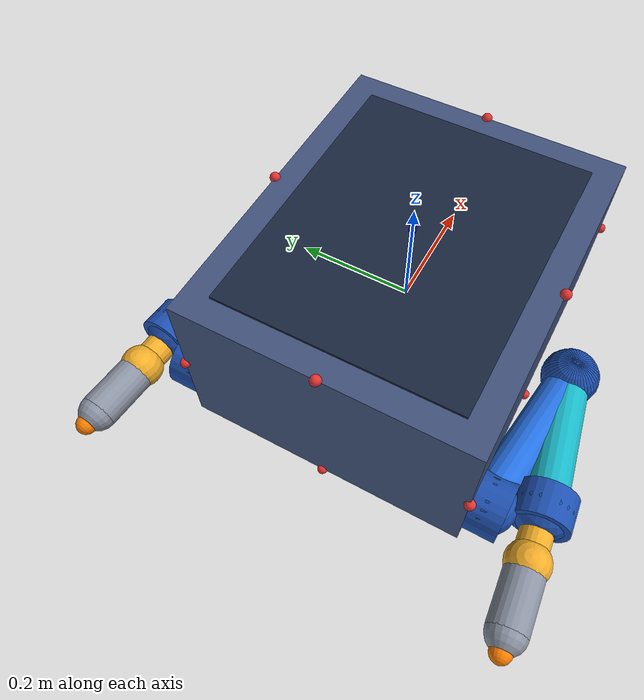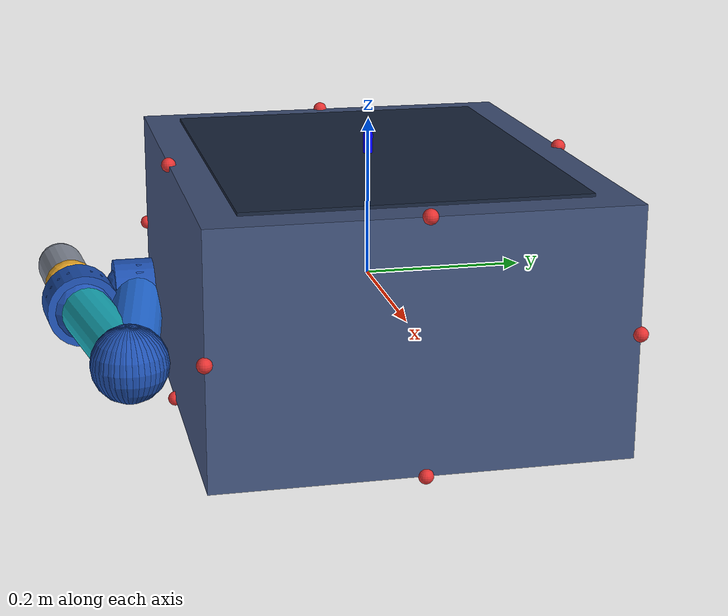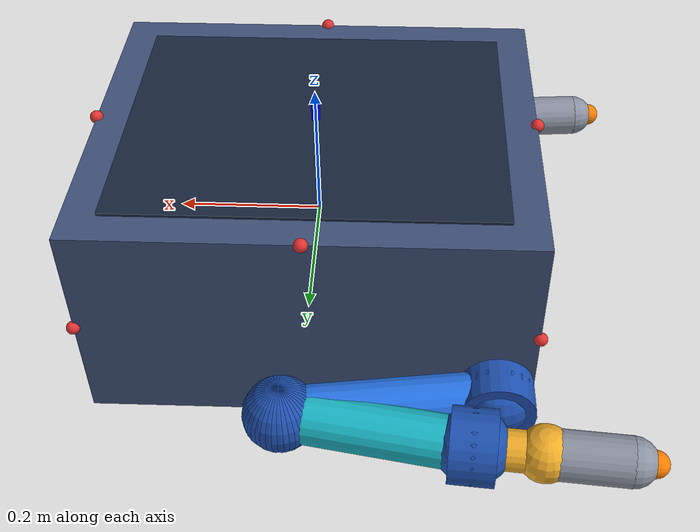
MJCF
<mujoco model="DASM_16DoF_Basilisk">
  <compiler angle="radian" inertiafromgeom="false" balanceinertia="true"/>
  <option gravity="0 0 0" timestep="0.001"><flag contact="disable"/></option>
  <default><joint damping="0" frictionloss="0"/><geom contype="0" conaffinity="0" mass="0"/><site size="0.012" rgba="1 0.7 0 1"/></default>
  <worldbody>
    <body name="spacecraft_base">
      <freejoint name="base_free"/>
      <inertial pos="0 0 0" mass="49.22" fullinertia="1.5399 2.7177 2.0322 0.1251 0.00144 -0.0019"/>
      <geom name="spacecraft_box" type="box" pos="0 0 0" size="0.3 0.25 0.1525" rgba="0.25 0.32 0.48 1"/>
      <site name="vizproxy_spacecraft_box" pos="0 0 0" quat="1 0 0 0" size="0.0005" rgba="0 0 0 0" group="5"/>
      <geom name="spacecraft_top_panel" type="box" pos="0 0 0.1545" size="0.255 0.205 0.002" rgba="0.10 0.15 0.24 1"/>
      <site name="vizproxy_spacecraft_top_panel" pos="0 0 0.1545" quat="1 0 0 0" size="0.0005" rgba="0 0 0 0" group="5"/>
      <site name="base_origin_site" pos="0 0 0" quat="1 0 0 0"/>
      <geom name="base_axis_x" type="capsule" fromto="0 0 0 0.18 0 0" size="0.006" rgba="1 0 0 1"/>
      <site name="vizproxy_base_axis_x" type="cylinder" fromto="0 0 0 0.18 0 0" size="0.0005" rgba="0 0 0 0" group="5"/>
      <geom name="base_axis_y" type="capsule" fromto="0 0 0 0 0.18 0" size="0.006" rgba="0 1 0 1"/>
      <site name="vizproxy_base_axis_y" type="cylinder" fromto="0 0 0 0 0.18 0" size="0.0005" rgba="0 0 0 0" group="5"/>
      <geom name="base_axis_z" type="capsule" fromto="0 0 0 0 0 0.18" size="0.006" rgba="0 0 1 1"/>
      <site name="vizproxy_base_axis_z" type="cylinder" fromto="0 0 0 0 0 0.18" size="0.0005" rgba="0 0 0 0" group="5"/>
      <site name="thruster_01_site" pos="0 0.25 0.1525" quat="1 0 0 0" size="0.009" rgba="0.9 0.2 0.2 1"/>
      <site name="thruster_02_site" pos="0 -0.25 -0.1525" quat="1 0 0 0" size="0.009" rgba="0.9 0.2 0.2 1"/>
      <site name="thruster_03_site" pos="0 0.25 -0.1525" quat="1 0 0 0" size="0.009" rgba="0.9 0.2 0.2 1"/>
      <site name="thruster_04_site" pos="0 -0.25 0.1525" quat="1 0 0 0" size="0.009" rgba="0.9 0.2 0.2 1"/>
      <site name="thruster_05_site" pos="0.3 0 0.1525" quat="1 0 0 0" size="0.009" rgba="0.9 0.2 0.2 1"/>
      <site name="thruster_06_site" pos="-0.3 0 -0.1525" quat="1 0 0 0" size="0.009" rgba="0.9 0.2 0.2 1"/>
      <site name="thruster_07_site" pos="0.3 0 -0.1525" quat="1 0 0 0" size="0.009" rgba="0.9 0.2 0.2 1"/>
      <site name="thruster_08_site" pos="-0.3 0 0.1525" quat="1 0 0 0" size="0.009" rgba="0.9 0.2 0.2 1"/>
      <site name="thruster_09_site" pos="0.3 0.25 0" quat="1 0 0 0" size="0.009" rgba="0.9 0.2 0.2 1"/>
      <site name="thruster_10_site" pos="-0.3 -0.25 0" quat="1 0 0 0" size="0.009" rgba="0.9 0.2 0.2 1"/>
      <site name="thruster_11_site" pos="0.3 -0.25 0" quat="1 0 0 0" size="0.009" rgba="0.9 0.2 0.2 1"/>
      <site name="thruster_12_site" pos="-0.3 0.25 0" quat="1 0 0 0" size="0.009" rgba="0.9 0.2 0.2 1"/>
      <site name="rw_torque_site" pos="0 0 0" quat="1 0 0 0" size="0.006" rgba="0.8 0.8 0.1 1"/>
      <geom name="rw_1_visual" type="sphere" pos="0.055 0 0" size="0.025" rgba="0.7 0.7 0.2 0.7"/>
      <site name="vizproxy_rw_1_visual" pos="0.055 0 0" quat="1 0 0 0" size="0.0005" rgba="0 0 0 0" group="5"/>
      <geom name="rw_2_visual" type="sphere" pos="0 0.055 0" size="0.025" rgba="0.7 0.7 0.2 0.7"/>
      <site name="vizproxy_rw_2_visual" pos="0 0.055 0" quat="1 0 0 0" size="0.0005" rgba="0 0 0 0" group="5"/>
      <geom name="rw_3_visual" type="sphere" pos="0 0 0.055" size="0.025" rgba="0.7 0.7 0.2 0.7"/>
      <site name="vizproxy_rw_3_visual" pos="0 0 0.055" quat="1 0 0 0" size="0.0005" rgba="0 0 0 0" group="5"/>
      <body name="arm1_base_link" pos="-0.245263588358068 0.188451518036017 -0.0899743170869363" quat="-7.31230107720312e-14 -7.31230107716731e-14 0.707106781184816 0.707106781188279">
        <inertial pos="0 0 0" mass="1.02" fullinertia="0.00267433 0.00282612 0.00089624 -7.3e-07 -0.00017389 4e-07"/>
        <geom name="arm1_mount_pedestal" type="cylinder" fromto="0.00473641164191482 -2.56829134630247e-05 -0.041451518036016 0.00473641164191482 -2.56829134630247e-05 0.081548481963984" size="0.048" rgba="0.2 0.23 0.28 1"/>
        <site name="vizproxy_arm1_mount_pedestal" type="cylinder" fromto="0.00473641164191482 -2.56829134630247e-05 -0.041451518036016 0.00473641164191482 -2.56829134630247e-05 0.081548481963984" size="0.0005" rgba="0 0 0 0" group="5"/>
        <geom name="arm1_mount_hub" type="sphere" pos="0.00473641164191482 -2.56829134630247e-05 -0.041451518036016" size="0.05" rgba="0.2 0.23 0.28 1"/>
        <site name="vizproxy_arm1_mount_hub" pos="0.00473641164191482 -2.56829134630247e-05 -0.041451518036016" quat="1 0 0 0" size="0.0005" rgba="0 0 0 0" group="5"/>
        <body name="arm1_link1" pos="0.00485791637597229 7.89492489975113e-05 0.0771625088683855" quat="1 0 0 0">
          <joint name="arm1_joint1" type="hinge" pos="-0.000121504734057468 -0.000104632162460536 0.00438597309559853" axis="0 0 1" limited="true" range="-2.618 2.618" damping="0" frictionloss="0" armature="0.05"/>
          <site name="arm1_joint1_frame_site" pos="-0.000121504734057468 -0.000104632162460536 0.00438597309559853"/>
          <inertial pos="0 0 0" mass="0.71" fullinertia="0.00048916 0.00040472 0.00043982 -3.6e-07 -2.24e-06 -2.42e-06"/>
          <geom name="arm1_joint1_housing" type="cylinder" fromto="-0.000121504734057468 -0.000104632162460536 -0.0296140269044015 -0.000121504734057468 -0.000104632162460536 0.0383859730955985" size="0.05" rgba="0.12 0.32 0.7 1"/>
          <site name="vizproxy_arm1_joint1_housing" type="cylinder" fromto="-0.000121504734057468 -0.000104632162460536 -0.0296140269044015 -0.000121504734057468 -0.000104632162460536 0.0383859730955985" size="0.0005" rgba="0 0 0 0" group="5"/>
          <body name="arm1_link2" pos="-0.198436300634688 0.00131800174760235 0.0204754923373496" quat="-0.0480084366585724 0.0480134430131485 0.705476100912518 0.705473862266274">
            <joint name="arm1_joint2" type="hinge" pos="-0.198666145229743 0.010926924140076 -0.00142121714502687" axis="0 0 1" limited="true" range="0.0 3.40339204138894" damping="0" frictionloss="0" armature="0.05"/>
            <site name="arm1_joint2_frame_site" pos="-0.198666145229743 0.010926924140076 -0.00142121714502687"/>
            <inertial pos="0 0 0" mass="1.17" fullinertia="0.00116918 0.06785384 0.06774489 -0.00180037 0.00025146 -4.55e-06"/>
            <geom name="arm1_link2_bar" type="capsule" fromto="-0.198666145229743 0.010926924140076 -0.00142121714502687 0.086363854770257 0.010926924140076 -0.00142121714502687" size="0.035" rgba="0.15 0.45 0.9 1"/>
            <site name="vizproxy_arm1_link2_bar" type="cylinder" fromto="-0.198666145229743 0.010926924140076 -0.00142121714502687 0.086363854770257 0.010926924140076 -0.00142121714502687" size="0.0005" rgba="0 0 0 0" group="5"/>
            <geom name="arm1_joint2_hub" type="sphere" pos="-0.198666145229743 0.010926924140076 -0.00142121714502687" size="0.05" rgba="0.12 0.32 0.7 1"/>
            <site name="vizproxy_arm1_joint2_hub" pos="-0.198666145229743 0.010926924140076 -0.00142121714502687" quat="1 0 0 0" size="0.0005" rgba="0 0 0 0" group="5"/>
            <geom name="arm1_joint3_hub" type="sphere" pos="0.086363854770257 0.010926924140076 -0.00142121714502687" size="0.05" rgba="0.12 0.32 0.7 1"/>
            <site name="vizproxy_arm1_joint3_hub" pos="0.086363854770257 0.010926924140076 -0.00142121714502687" quat="1 0 0 0" size="0.0005" rgba="0 0 0 0" group="5"/>
            <geom name="collision_arm1_link2" type="capsule" fromto="-0.198666145229743 0.010926924140076 -0.00142121714502687 0.086363854770257 0.010926924140076 -0.00142121714502687" size="0.035" rgba="0 0 0 0" group="4" contype="0" conaffinity="0" mass="0"/>
            <geom name="collision_arm1_link2_base_trim" type="capsule" fromto="0.015106354770257 0.010926924140076 -0.00142121714502687 0.086363854770257 0.010926924140076 -0.00142121714502687" size="0.035" rgba="0 0 0 0" group="4" contype="0" conaffinity="0" mass="0"/>
            <body name="arm1_link3" pos="0.086363854770257 0.010926924140076 -0.00142121714502687" quat="-0.623996220379733 0 0 0.781427358717244">
              <joint name="arm1_joint3" type="hinge" pos="-0 -0 -0" axis="0 0 1" limited="true" range="-3.05432619099008 0.0" damping="0" frictionloss="0" armature="0.05"/>
              <site name="arm1_joint3_frame_site" pos="-0 -0 -0"/>
              <inertial pos="-0.0202737662122021 -0.133914995944595 -0.000458682652737356" mass="0.5" fullinertia="0.01361711 0.00045024 0.01380322 0.00165794 -4.8e-07 -4.5e-07"/>
              <geom name="arm1_link3_bar" type="capsule" fromto="0 0 0 -0.021984 -0.25075 0" size="0.035" rgba="0.1 0.72 0.78 1.0"/>
              <site name="vizproxy_arm1_link3_bar" type="cylinder" fromto="0 0 0 -0.021984 -0.25075 0" size="0.0005" rgba="0 0 0 0" group="5"/>
              <geom name="arm1_joint3_root" type="sphere" pos="0 0 0" size="0.05" rgba="0.12 0.32 0.7 1"/>
              <site name="vizproxy_arm1_joint3_root" pos="0 0 0" quat="1 0 0 0" size="0.0005" rgba="0 0 0 0" group="5"/>
              <geom name="arm1_joint4_hub" type="sphere" pos="-0.021984 -0.25075 0" size="0.05" rgba="0.12 0.32 0.7 1"/>
              <site name="vizproxy_arm1_joint4_hub" pos="-0.021984 -0.25075 0" quat="1 0 0 0" size="0.0005" rgba="0 0 0 0" group="5"/>
              <geom name="collision_arm1_link3" type="capsule" fromto="0 0 0 -0.021984 -0.25075 0" size="0.035" rgba="0 0 0 0" group="4" contype="0" conaffinity="0" mass="0"/>
              <body name="arm1_link4" pos="-0.021984 -0.25075 0" quat="0.707105482511236 0.707108079859474 0 0">
                <joint name="arm1_joint4" type="hinge" pos="-0 -0 -0" axis="0 0 1" limited="true" range="-1.745 1.745" damping="0" frictionloss="0" armature="0.05"/>
                <site name="arm1_joint4_frame_site" pos="-0 -0 -0"/>
                <inertial pos="-9.66635791618542e-05 0.000876064475651083 -0.00496880904640868" mass="0.38" fullinertia="0.00018501 0.00018965 0.00015484 5.4e-07 1.2e-06 -8.41e-06"/>
                <geom name="arm1_joint4_housing" type="cylinder" fromto="0 0 -0.03 0 0 0.03" size="0.05" rgba="0.12 0.32 0.7 1"/>
                <site name="vizproxy_arm1_joint4_housing" type="cylinder" fromto="0 0 -0.03 0 0 0.03" size="0.0005" rgba="0 0 0 0" group="5"/>
                <geom name="collision_arm1_joint4_housing" type="capsule" fromto="0 0 -0.03 0 0 0.03" size="0.05" rgba="0 0 0 0" group="4" contype="0" conaffinity="0" mass="0"/>
                <body name="arm1_link5" pos="0 0 0" quat="-0.707105482511236 0.707108079859474 0 0">
                  <joint name="arm1_joint5" type="hinge" pos="-0 -0 -0" axis="0 0 1" limited="true" range="-1.30899693899575 1.30899693899575" damping="0" frictionloss="0" armature="0.05"/>
                  <site name="arm1_joint5_frame_site" pos="-0 -0 -0"/>
                  <inertial pos="-4.10554118924211e-05 -0.0566486692356075 -0.0037205791677906" mass="0.383" fullinertia="0.00166169 0.0001851 0.00164321 6e-08 -7e-08 1.026e-05"/>
                  <geom name="arm1_link5_bar" type="capsule" fromto="0 0 0 8.8259e-05 -0.091 0" size="0.027" rgba="0.95 0.68 0.16 1"/>
                  <site name="vizproxy_arm1_link5_bar" type="cylinder" fromto="0 0 0 8.8259e-05 -0.091 0" size="0.0005" rgba="0 0 0 0" group="5"/>
                  <geom name="arm1_joint5_hub" type="sphere" pos="0 0 0" size="0.04" rgba="0.95 0.48 0.12 1"/>
                  <site name="vizproxy_arm1_joint5_hub" pos="0 0 0" quat="1 0 0 0" size="0.0005" rgba="0 0 0 0" group="5"/>
                  <geom name="arm1_wrist_hub" type="sphere" pos="8.8259e-05 -0.091 0" size="0.0375" rgba="0.95 0.68 0.16 1"/>
                  <site name="vizproxy_arm1_wrist_hub" pos="8.8259e-05 -0.091 0" quat="1 0 0 0" size="0.0005" rgba="0 0 0 0" group="5"/>
                  <geom name="collision_arm1_link5" type="capsule" fromto="0 0 0 8.8259e-05 -0.091 0" size="0.027" rgba="0 0 0 0" group="4" contype="0" conaffinity="0" mass="0"/>
                  <body name="arm1_link6" pos="-7.62930068919738e-11 -0.0890000000332921 9.06718426312869e-06" quat="0.707105482511236 0.707108079859474 0 0">
                    <inertial pos="0 0 0" mass="0.007" fullinertia="5.73015540542155e-07 5.73015540542155e-07 1.06738869138926e-06 -1.98305403089247e-22 -7.2791893904596e-23 -3.4146026640245e-24"/>
                    <geom name="arm1_wrist_adapter" type="cylinder" fromto="8.82590762930069e-05 -9.0598378529832e-06 -0.02 8.82590762930069e-05 -9.0598378529832e-06 0.024" size="0.027" rgba="0.95 0.68 0.16 1"/>
                    <site name="vizproxy_arm1_wrist_adapter" type="cylinder" fromto="8.82590762930069e-05 -9.0598378529832e-06 -0.02 8.82590762930069e-05 -9.0598378529832e-06 0.024" size="0.0005" rgba="0 0 0 0" group="5"/>
                    <geom name="collision_arm1_wrist_adapter" type="capsule" fromto="8.82590762930069e-05 -9.0598378529832e-06 -0.02 8.82590762930069e-05 -9.0598378529832e-06 0.024" size="0.027" rgba="0 0 0 0" group="4" contype="0" conaffinity="0" mass="0"/>
                    <body name="arm1_gripper_base" pos="-9.55480859425841e-05 7.14434777048079e-05 0.0341436689908876" quat="1 0 0 0">
                      <inertial pos="0 0 0" mass="0.45" fullinertia="0.00092934 0.00071447 0.00039442 3.4e-07 -7.38e-06 5e-08"/>
                      <geom name="arm1_gripper_palm" type="cylinder" fromto="0.000183807162235591 -8.05033155577911e-05 -0.0321436689908876 0.000183807162235591 -8.05033155577911e-05 0.0758563310091124" size="0.033" rgba="0.55 0.58 0.64 1"/>
                      <site name="vizproxy_arm1_gripper_palm" type="cylinder" fromto="0.000183807162235591 -8.05033155577911e-05 -0.0321436689908876 0.000183807162235591 -8.05033155577911e-05 0.0758563310091124" size="0.0005" rgba="0 0 0 0" group="5"/>
                      <geom name="arm1_gripper_tip_hub" type="sphere" pos="0.000183807162235591 -8.05033155577911e-05 0.0758563310091124" size="0.033" rgba="0.55 0.58 0.64 1"/>
                      <site name="vizproxy_arm1_gripper_tip_hub" pos="0.000183807162235591 -8.05033155577911e-05 0.0758563310091124" quat="1 0 0 0" size="0.0005" rgba="0 0 0 0" group="5"/>
                      <geom name="collision_arm1_gripper_palm" type="capsule" fromto="0.000183807162235591 -8.05033155577911e-05 -0.0321436689908876 0.000183807162235591 -8.05033155577911e-05 0.0758563310091124" size="0.033" rgba="0 0 0 0" group="4" contype="0" conaffinity="0" mass="0"/>
                      <site name="arm1_end_effector_site" pos="0.000183807162235591 -8.05033155577911e-05 0.103656331009112" size="0.018" rgba="1 0.5 0 1"/>
                      <body name="arm1_link7" pos="0.000835039012655271 -0.00980291031140187 0.0544633083831866" quat="0.707105482511236 0.707108079859474 0 0">
                        <inertial pos="0 0 0" mass="0.025" fullinertia="7.371e-05 7.81e-06 7.47e-05 -1.13e-06 2.1e-07 -1.372e-05"/>
                        <geom name="arm1_link7_finger" type="capsule" fromto="-0.00065123185041968 0.0491929869131989 -0.00972258769184025 -0.00065123185041968 -0.0508070130868011 0.00827741230815975" size="0.012" rgba="0.78 0.8 0.84 1"/>
                        <site name="vizproxy_arm1_link7_finger" type="cylinder" fromto="-0.00065123185041968 0.0491929869131989 -0.00972258769184025 -0.00065123185041968 -0.0508070130868011 0.00827741230815975" size="0.0005" rgba="0 0 0 0" group="5"/>
                        <geom name="collision_arm1_finger7" type="capsule" fromto="-0.00065123185041968 0.0491929869131989 -0.00972258769184025 -0.00065123185041968 -0.0508070130868011 0.00827741230815975" size="0.012" rgba="0 0 0 0" group="4" contype="0" conaffinity="0" mass="0"/>
                      </body>
                      <body name="arm1_link8" pos="-0.00046735326337657 0.00964190846424023 0.0544633083831864" quat="2.59734346696461e-06 2.59735300755741e-06 0.707108079854703 0.707105482506466">
                        <inertial pos="0 0 0" mass="0.025" fullinertia="7.371e-05 7.81e-06 7.47e-05 -1.13e-06 2.1e-07 -1.372e-05"/>
                        <geom name="arm1_link8_finger" type="capsule" fromto="-0.000651231850419722 0.0491929869131991 -0.00972258769184024 -0.000651231850419722 -0.0508070130868009 0.00827741230815976" size="0.012" rgba="0.78 0.8 0.84 1"/>
                        <site name="vizproxy_arm1_link8_finger" type="cylinder" fromto="-0.000651231850419722 0.0491929869131991 -0.00972258769184024 -0.000651231850419722 -0.0508070130868009 0.00827741230815976" size="0.0005" rgba="0 0 0 0" group="5"/>
                        <geom name="collision_arm1_finger8" type="capsule" fromto="-0.000651231850419722 0.0491929869131991 -0.00972258769184024 -0.000651231850419722 -0.0508070130868009 0.00827741230815976" size="0.012" rgba="0 0 0 0" group="4" contype="0" conaffinity="0" mass="0"/>
                      </body>
                    </body>
                  </body>
                </body>
              </body>
            </body>
          </body>
        </body>
      </body>
      <body name="arm2_base_link" pos="-0.245263588358102 -0.188451518036015 -0.0900256829138623" quat="-7.31230107720312e-14 7.31230107716731e-14 -0.707106781184816 0.707106781188279">
        <inertial pos="0 0 0" mass="1.02" fullinertia="0.00267433 0.00282612 0.00089624 -7.3e-07 -0.00017389 4e-07"/>
        <geom name="arm2_mount_pedestal" type="cylinder" fromto="0.00473641164191482 -2.56829134630247e-05 -0.041451518036016 0.00473641164191482 -2.56829134630247e-05 0.081548481963984" size="0.048" rgba="0.2 0.23 0.28 1"/>
        <site name="vizproxy_arm2_mount_pedestal" type="cylinder" fromto="0.00473641164191482 -2.56829134630247e-05 -0.041451518036016 0.00473641164191482 -2.56829134630247e-05 0.081548481963984" size="0.0005" rgba="0 0 0 0" group="5"/>
        <geom name="arm2_mount_hub" type="sphere" pos="0.00473641164191482 -2.56829134630247e-05 -0.041451518036016" size="0.05" rgba="0.2 0.23 0.28 1"/>
        <site name="vizproxy_arm2_mount_hub" pos="0.00473641164191482 -2.56829134630247e-05 -0.041451518036016" quat="1 0 0 0" size="0.0005" rgba="0 0 0 0" group="5"/>
        <body name="arm2_link1" pos="0.00485791637597229 7.89492489975113e-05 0.0771625088683855" quat="1 0 0 0">
          <joint name="arm2_joint1" type="hinge" pos="-0.000121504734057468 -0.000104632162460536 0.00438597309559853" axis="0 0 1" limited="true" range="-2.618 2.618" damping="0" frictionloss="0" armature="0.05"/>
          <site name="arm2_joint1_frame_site" pos="-0.000121504734057468 -0.000104632162460536 0.00438597309559853"/>
          <inertial pos="0 0 0" mass="0.71" fullinertia="0.00048916 0.00040472 0.00043982 -3.6e-07 -2.24e-06 -2.42e-06"/>
          <geom name="arm2_joint1_housing" type="cylinder" fromto="-0.000121504734057468 -0.000104632162460536 -0.0296140269044015 -0.000121504734057468 -0.000104632162460536 0.0383859730955985" size="0.05" rgba="0.12 0.32 0.7 1"/>
          <site name="vizproxy_arm2_joint1_housing" type="cylinder" fromto="-0.000121504734057468 -0.000104632162460536 -0.0296140269044015 -0.000121504734057468 -0.000104632162460536 0.0383859730955985" size="0.0005" rgba="0 0 0 0" group="5"/>
          <body name="arm2_link2" pos="-0.198436300634688 0.00131800174760235 0.0204754923373496" quat="-0.0480084366585724 0.0480134430131485 0.705476100912518 0.705473862266274">
            <joint name="arm2_joint2" type="hinge" pos="-0.198666145229743 0.010926924140076 -0.00142121714502687" axis="0 0 1" limited="true" range="0.0 3.40339204138894" damping="0" frictionloss="0" armature="0.05"/>
            <site name="arm2_joint2_frame_site" pos="-0.198666145229743 0.010926924140076 -0.00142121714502687"/>
            <inertial pos="0 0 0" mass="1.17" fullinertia="0.00116918 0.06785384 0.06774489 -0.00180037 0.00025146 -4.55e-06"/>
            <geom name="arm2_link2_bar" type="capsule" fromto="-0.198666145229743 0.010926924140076 -0.00142121714502687 0.086363854770257 0.010926924140076 -0.00142121714502687" size="0.035" rgba="0.15 0.45 0.9 1"/>
            <site name="vizproxy_arm2_link2_bar" type="cylinder" fromto="-0.198666145229743 0.010926924140076 -0.00142121714502687 0.086363854770257 0.010926924140076 -0.00142121714502687" size="0.0005" rgba="0 0 0 0" group="5"/>
            <geom name="arm2_joint2_hub" type="sphere" pos="-0.198666145229743 0.010926924140076 -0.00142121714502687" size="0.05" rgba="0.12 0.32 0.7 1"/>
            <site name="vizproxy_arm2_joint2_hub" pos="-0.198666145229743 0.010926924140076 -0.00142121714502687" quat="1 0 0 0" size="0.0005" rgba="0 0 0 0" group="5"/>
            <geom name="arm2_joint3_hub" type="sphere" pos="0.086363854770257 0.010926924140076 -0.00142121714502687" size="0.05" rgba="0.12 0.32 0.7 1"/>
            <site name="vizproxy_arm2_joint3_hub" pos="0.086363854770257 0.010926924140076 -0.00142121714502687" quat="1 0 0 0" size="0.0005" rgba="0 0 0 0" group="5"/>
            <geom name="collision_arm2_link2" type="capsule" fromto="-0.198666145229743 0.010926924140076 -0.00142121714502687 0.086363854770257 0.010926924140076 -0.00142121714502687" size="0.035" rgba="0 0 0 0" group="4" contype="0" conaffinity="0" mass="0"/>
            <geom name="collision_arm2_link2_base_trim" type="capsule" fromto="0.015106354770257 0.010926924140076 -0.00142121714502687 0.086363854770257 0.010926924140076 -0.00142121714502687" size="0.035" rgba="0 0 0 0" group="4" contype="0" conaffinity="0" mass="0"/>
            <body name="arm2_link3" pos="0.086363854770257 0.010926924140076 -0.00142121714502687" quat="-0.623996220379733 0 0 0.781427358717244">
              <joint name="arm2_joint3" type="hinge" pos="-0 -0 -0" axis="0 0 1" limited="true" range="-3.05432619099008 0.0" damping="0" frictionloss="0" armature="0.05"/>
              <site name="arm2_joint3_frame_site" pos="-0 -0 -0"/>
              <inertial pos="-0.0202737662122021 -0.133914995944595 -0.000458682652737356" mass="0.5" fullinertia="0.01361711 0.00045024 0.01380322 0.00165794 -4.8e-07 -4.5e-07"/>
              <geom name="arm2_link3_bar" type="capsule" fromto="0 0 0 -0.021984 -0.25075 0" size="0.035" rgba="0.1 0.72 0.78 1.0"/>
              <site name="vizproxy_arm2_link3_bar" type="cylinder" fromto="0 0 0 -0.021984 -0.25075 0" size="0.0005" rgba="0 0 0 0" group="5"/>
              <geom name="arm2_joint3_root" type="sphere" pos="0 0 0" size="0.05" rgba="0.12 0.32 0.7 1"/>
              <site name="vizproxy_arm2_joint3_root" pos="0 0 0" quat="1 0 0 0" size="0.0005" rgba="0 0 0 0" group="5"/>
              <geom name="arm2_joint4_hub" type="sphere" pos="-0.021984 -0.25075 0" size="0.05" rgba="0.12 0.32 0.7 1"/>
              <site name="vizproxy_arm2_joint4_hub" pos="-0.021984 -0.25075 0" quat="1 0 0 0" size="0.0005" rgba="0 0 0 0" group="5"/>
              <geom name="collision_arm2_link3" type="capsule" fromto="0 0 0 -0.021984 -0.25075 0" size="0.035" rgba="0 0 0 0" group="4" contype="0" conaffinity="0" mass="0"/>
              <body name="arm2_link4" pos="-0.021984 -0.25075 0" quat="0.707105482511236 0.707108079859474 0 0">
                <joint name="arm2_joint4" type="hinge" pos="-0 -0 -0" axis="0 0 1" limited="true" range="-1.745 1.745" damping="0" frictionloss="0" armature="0.05"/>
                <site name="arm2_joint4_frame_site" pos="-0 -0 -0"/>
                <inertial pos="-9.66635791618542e-05 0.000876064475651083 -0.00496880904640868" mass="0.38" fullinertia="0.00018501 0.00018965 0.00015484 5.4e-07 1.2e-06 -8.41e-06"/>
                <geom name="arm2_joint4_housing" type="cylinder" fromto="0 0 -0.03 0 0 0.03" size="0.05" rgba="0.12 0.32 0.7 1"/>
                <site name="vizproxy_arm2_joint4_housing" type="cylinder" fromto="0 0 -0.03 0 0 0.03" size="0.0005" rgba="0 0 0 0" group="5"/>
                <geom name="collision_arm2_joint4_housing" type="capsule" fromto="0 0 -0.03 0 0 0.03" size="0.05" rgba="0 0 0 0" group="4" contype="0" conaffinity="0" mass="0"/>
                <body name="arm2_link5" pos="0 0 0" quat="-0.707105482511236 0.707108079859474 0 0">
                  <joint name="arm2_joint5" type="hinge" pos="-0 -0 -0" axis="0 0 1" limited="true" range="-1.30899693899575 1.30899693899575" damping="0" frictionloss="0" armature="0.05"/>
                  <site name="arm2_joint5_frame_site" pos="-0 -0 -0"/>
                  <inertial pos="-4.10554118924211e-05 -0.0566486692356075 -0.0037205791677906" mass="0.383" fullinertia="0.00166169 0.0001851 0.00164321 6e-08 -7e-08 1.026e-05"/>
                  <geom name="arm2_link5_bar" type="capsule" fromto="0 0 0 8.8259e-05 -0.091 0" size="0.027" rgba="0.95 0.68 0.16 1"/>
                  <site name="vizproxy_arm2_link5_bar" type="cylinder" fromto="0 0 0 8.8259e-05 -0.091 0" size="0.0005" rgba="0 0 0 0" group="5"/>
                  <geom name="arm2_joint5_hub" type="sphere" pos="0 0 0" size="0.04" rgba="0.95 0.48 0.12 1"/>
                  <site name="vizproxy_arm2_joint5_hub" pos="0 0 0" quat="1 0 0 0" size="0.0005" rgba="0 0 0 0" group="5"/>
                  <geom name="arm2_wrist_hub" type="sphere" pos="8.8259e-05 -0.091 0" size="0.0375" rgba="0.95 0.68 0.16 1"/>
                  <site name="vizproxy_arm2_wrist_hub" pos="8.8259e-05 -0.091 0" quat="1 0 0 0" size="0.0005" rgba="0 0 0 0" group="5"/>
                  <geom name="collision_arm2_link5" type="capsule" fromto="0 0 0 8.8259e-05 -0.091 0" size="0.027" rgba="0 0 0 0" group="4" contype="0" conaffinity="0" mass="0"/>
                  <body name="arm2_link6" pos="-7.62930068919738e-11 -0.0890000000332921 9.06718426312869e-06" quat="0.707105482511236 0.707108079859474 0 0">
                    <inertial pos="0 0 0" mass="0.007" fullinertia="5.73015540542155e-07 5.73015540542155e-07 1.06738869138926e-06 -1.98305403089247e-22 -7.2791893904596e-23 -3.4146026640245e-24"/>
                    <geom name="arm2_wrist_adapter" type="cylinder" fromto="8.82590762930069e-05 -9.0598378529832e-06 -0.02 8.82590762930069e-05 -9.0598378529832e-06 0.024" size="0.027" rgba="0.95 0.68 0.16 1"/>
                    <site name="vizproxy_arm2_wrist_adapter" type="cylinder" fromto="8.82590762930069e-05 -9.0598378529832e-06 -0.02 8.82590762930069e-05 -9.0598378529832e-06 0.024" size="0.0005" rgba="0 0 0 0" group="5"/>
                    <geom name="collision_arm2_wrist_adapter" type="capsule" fromto="8.82590762930069e-05 -9.0598378529832e-06 -0.02 8.82590762930069e-05 -9.0598378529832e-06 0.024" size="0.027" rgba="0 0 0 0" group="4" contype="0" conaffinity="0" mass="0"/>
                    <body name="arm2_gripper_base" pos="-9.55480859425841e-05 7.14434777048079e-05 0.0341436689908876" quat="1 0 0 0">
                      <inertial pos="0 0 0" mass="0.45" fullinertia="0.00092934 0.00071447 0.00039442 3.4e-07 -7.38e-06 5e-08"/>
                      <geom name="arm2_gripper_palm" type="cylinder" fromto="0.000183807162235591 -8.05033155577911e-05 -0.0321436689908876 0.000183807162235591 -8.05033155577911e-05 0.0758563310091124" size="0.033" rgba="0.55 0.58 0.64 1"/>
                      <site name="vizproxy_arm2_gripper_palm" type="cylinder" fromto="0.000183807162235591 -8.05033155577911e-05 -0.0321436689908876 0.000183807162235591 -8.05033155577911e-05 0.0758563310091124" size="0.0005" rgba="0 0 0 0" group="5"/>
                      <geom name="arm2_gripper_tip_hub" type="sphere" pos="0.000183807162235591 -8.05033155577911e-05 0.0758563310091124" size="0.033" rgba="0.55 0.58 0.64 1"/>
                      <site name="vizproxy_arm2_gripper_tip_hub" pos="0.000183807162235591 -8.05033155577911e-05 0.0758563310091124" quat="1 0 0 0" size="0.0005" rgba="0 0 0 0" group="5"/>
                      <geom name="collision_arm2_gripper_palm" type="capsule" fromto="0.000183807162235591 -8.05033155577911e-05 -0.0321436689908876 0.000183807162235591 -8.05033155577911e-05 0.0758563310091124" size="0.033" rgba="0 0 0 0" group="4" contype="0" conaffinity="0" mass="0"/>
                      <site name="arm2_end_effector_site" pos="0.000183807162235591 -8.05033155577911e-05 0.103656331009112" size="0.018" rgba="1 0.5 0 1"/>
                      <body name="arm2_link7" pos="0.000835039012655271 -0.00980291031140187 0.0544633083831866" quat="0.707105482511236 0.707108079859474 0 0">
                        <inertial pos="0 0 0" mass="0.025" fullinertia="7.371e-05 7.81e-06 7.47e-05 -1.13e-06 2.1e-07 -1.372e-05"/>
                        <geom name="arm2_link7_finger" type="capsule" fromto="-0.00065123185041968 0.0491929869131989 -0.00972258769184025 -0.00065123185041968 -0.0508070130868011 0.00827741230815975" size="0.012" rgba="0.78 0.8 0.84 1"/>
                        <site name="vizproxy_arm2_link7_finger" type="cylinder" fromto="-0.00065123185041968 0.0491929869131989 -0.00972258769184025 -0.00065123185041968 -0.0508070130868011 0.00827741230815975" size="0.0005" rgba="0 0 0 0" group="5"/>
                        <geom name="collision_arm2_finger7" type="capsule" fromto="-0.00065123185041968 0.0491929869131989 -0.00972258769184025 -0.00065123185041968 -0.0508070130868011 0.00827741230815975" size="0.012" rgba="0 0 0 0" group="4" contype="0" conaffinity="0" mass="0"/>
                      </body>
                      <body name="arm2_link8" pos="-0.00046735326337657 0.00964190846424023 0.0544633083831864" quat="2.59734346696461e-06 2.59735300755741e-06 0.707108079854703 0.707105482506466">
                        <inertial pos="0 0 0" mass="0.025" fullinertia="7.371e-05 7.81e-06 7.47e-05 -1.13e-06 2.1e-07 -1.372e-05"/>
                        <geom name="arm2_link8_finger" type="capsule" fromto="-0.000651231850419722 0.0491929869131991 -0.00972258769184024 -0.000651231850419722 -0.0508070130868009 0.00827741230815976" size="0.012" rgba="0.78 0.8 0.84 1"/>
                        <site name="vizproxy_arm2_link8_finger" type="cylinder" fromto="-0.000651231850419722 0.0491929869131991 -0.00972258769184024 -0.000651231850419722 -0.0508070130868009 0.00827741230815976" size="0.0005" rgba="0 0 0 0" group="5"/>
                        <geom name="collision_arm2_finger8" type="capsule" fromto="-0.000651231850419722 0.0491929869131991 -0.00972258769184024 -0.000651231850419722 -0.0508070130868009 0.00827741230815976" size="0.012" rgba="0 0 0 0" group="4" contype="0" conaffinity="0" mass="0"/>
                      </body>
                    </body>
                  </body>
                </body>
              </body>
            </body>
          </body>
        </body>
      </body>
    </body>
  </worldbody>
  <actuator>
    <general name="rw_1_base_reaction" site="rw_torque_site" gear="0 0 0 1 0 0"/>
    <general name="rw_2_base_reaction" site="rw_torque_site" gear="0 0 0 0 1 0"/>
    <general name="rw_3_base_reaction" site="rw_torque_site" gear="0 0 0 0 0 1"/>
    <general name="thruster_01_act" site="thruster_01_site" gear="1 0 0 0 0 0"/>
    <general name="thruster_02_act" site="thruster_02_site" gear="1 0 0 0 0 0"/>
    <general name="thruster_03_act" site="thruster_03_site" gear="-1 0 0 0 0 0"/>
    <general name="thruster_04_act" site="thruster_04_site" gear="-1 0 0 0 0 0"/>
    <general name="thruster_05_act" site="thruster_05_site" gear="0 1 0 0 0 0"/>
    <general name="thruster_06_act" site="thruster_06_site" gear="0 1 0 0 0 0"/>
    <general name="thruster_07_act" site="thruster_07_site" gear="0 -1 0 0 0 0"/>
    <general name="thruster_08_act" site="thruster_08_site" gear="0 -1 0 0 0 0"/>
    <general name="thruster_09_act" site="thruster_09_site" gear="0 0 1 0 0 0"/>
    <general name="thruster_10_act" site="thruster_10_site" gear="0 0 1 0 0 0"/>
    <general name="thruster_11_act" site="thruster_11_site" gear="0 0 -1 0 0 0"/>
    <general name="thruster_12_act" site="thruster_12_site" gear="0 0 -1 0 0 0"/>
    <general name="env_force_0" site="base_origin_site" gear="1 0 0 0 0 0"/>
    <general name="env_force_1" site="base_origin_site" gear="0 1 0 0 0 0"/>
    <general name="env_force_2" site="base_origin_site" gear="0 0 1 0 0 0"/>
  </actuator>
</mujoco>
